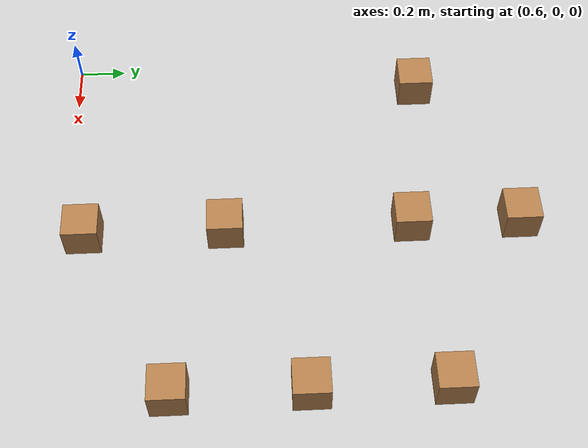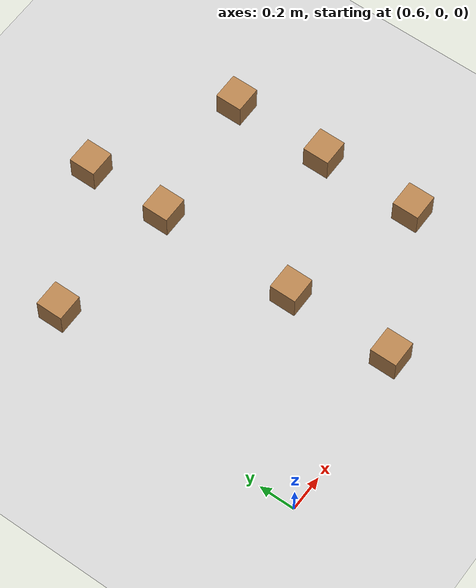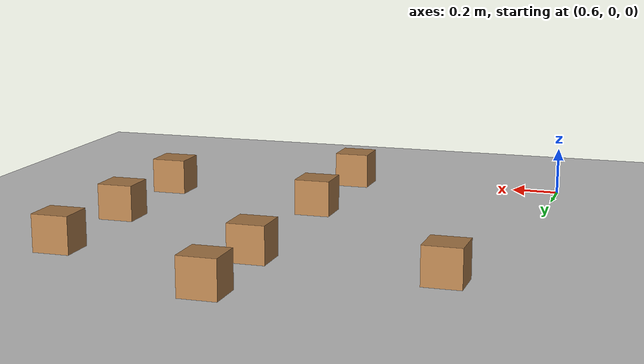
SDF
<sdf version="1.7">
 <world name="default">
  <model name="ground_plane">
   <static>1</static>
   <link name="link">
    <collision name="collision">
     <geometry><plane><normal>0 0 1</normal><size>100 100</size></plane></geometry>
     <surface>
      <contact><collide_bitmask>65535</collide_bitmask></contact>
      <friction><ode><mu>100</mu><mu2>50</mu2></ode></friction>
     </surface>
    </collision>
    <visual name="visual">
     <cast_shadows>0</cast_shadows>
     <geometry><plane><normal>0 0 1</normal><size>100 100</size></plane></geometry>
     <material>
      <script><uri>file://media/materials/scripts/gazebo.material</uri><name>Gazebo/Grey</name></script>
     </material>
    </visual>
   </link>
  </model>
  <model name="wood_cube_15_clone_0">
   <link name="link">
    <pose>0 0 0.05 0 -0 0</pose>
    <inertial>
     <mass>0.5167</mass>
     <inertia>
      <ixx>0.00086117</ixx>
      <ixy>0</ixy>
      <ixz>0</ixz>
      <iyy>0.00086117</iyy>
      <iyz>0</iyz>
      <izz>0.00086117</izz>
     </inertia>
    </inertial>
    <visual name="visual">
     <geometry><box><size>0.15 0.15 0.15</size></box></geometry>
     <material>
      <script><uri>file://media/materials/scripts/gazebo.material</uri><name>Gazebo/Wood</name></script>
      <shader type="pixel"><normal_map>__default__</normal_map></shader>
      <ambient>1 1 1 1</ambient>
      <diffuse>1 1 1 1</diffuse>
      <specular>0.2 0.2 0.2 1</specular>
      <emissive>0 0 0 1</emissive>
     </material>
    </visual>
    <collision name="collision">
     <geometry><box><size>0.15 0.15 0.15</size></box></geometry>
     <surface>
      <friction>
       <ode><mu>1</mu><mu2>1</mu2><fdir1>0 0 0</fdir1><slip1>0</slip1><slip2>0</slip2></ode>
       <torsional>
        <coefficient>1</coefficient>
        <patch_radius>0</patch_radius>
        <surface_radius>0.01</surface_radius>
        <use_patch_radius>0</use_patch_radius>
        <ode><slip>0</slip></ode>
       </torsional>
      </friction>
      <bounce><restitution_coefficient>0</restitution_coefficient><threshold>1e+06</threshold></bounce>
      <contact>
       <collide_without_contact>0</collide_without_contact>
       <collide_without_contact_bitmask>1</collide_without_contact_bitmask>
       <collide_bitmask>1</collide_bitmask>
       <ode>
        <soft_cfm>0</soft_cfm>
        <soft_erp>0.2</soft_erp>
        <kp>100000</kp>
        <kd>100</kd>
        <max_vel>100</max_vel>
        <min_depth>0.001</min_depth>
       </ode>
       <bullet>
        <split_impulse>1</split_impulse>
        <split_impulse_penetration_threshold>-0.01</split_impulse_penetration_threshold>
        <soft_cfm>0</soft_cfm>
        <soft_erp>0.2</soft_erp>
        <kp>100000</kp>
        <kd>100</kd>
       </bullet>
      </contact>
     </surface>
    </collision>
   </link>
   <static>0</static>
   <pose>0.775 1.55 0.023987 0 -0 0</pose>
  </model>
  <model name="wood_cube_15_clone_clone">
   <link name="link">
    <pose>0 0 0.05 0 -0 0</pose>
    <inertial>
     <mass>0.5167</mass>
     <inertia>
      <ixx>0.00086117</ixx>
      <ixy>0</ixy>
      <ixz>0</ixz>
      <iyy>0.00086117</iyy>
      <iyz>0</iyz>
      <izz>0.00086117</izz>
     </inertia>
    </inertial>
    <visual name="visual">
     <geometry><box><size>0.15 0.15 0.15</size></box></geometry>
     <material>
      <script><uri>file://media/materials/scripts/gazebo.material</uri><name>Gazebo/Wood</name></script>
      <shader type="pixel"><normal_map>__default__</normal_map></shader>
      <ambient>1 1 1 1</ambient>
      <diffuse>1 1 1 1</diffuse>
      <specular>0.2 0.2 0.2 1</specular>
      <emissive>0 0 0 1</emissive>
     </material>
    </visual>
    <collision name="collision">
     <geometry><box><size>0.15 0.15 0.15</size></box></geometry>
     <surface>
      <friction>
       <ode><mu>1</mu><mu2>1</mu2><fdir1>0 0 0</fdir1><slip1>0</slip1><slip2>0</slip2></ode>
       <torsional>
        <coefficient>1</coefficient>
        <patch_radius>0</patch_radius>
        <surface_radius>0.01</surface_radius>
        <use_patch_radius>0</use_patch_radius>
        <ode><slip>0</slip></ode>
       </torsional>
      </friction>
      <bounce><restitution_coefficient>0</restitution_coefficient><threshold>1e+06</threshold></bounce>
      <contact>
       <collide_without_contact>0</collide_without_contact>
       <collide_without_contact_bitmask>1</collide_without_contact_bitmask>
       <collide_bitmask>1</collide_bitmask>
       <ode>
        <soft_cfm>0</soft_cfm>
        <soft_erp>0.2</soft_erp>
        <kp>100000</kp>
        <kd>100</kd>
        <max_vel>100</max_vel>
        <min_depth>0.001</min_depth>
       </ode>
       <bullet>
        <split_impulse>1</split_impulse>
        <split_impulse_penetration_threshold>-0.01</split_impulse_penetration_threshold>
        <soft_cfm>0</soft_cfm>
        <soft_erp>0.2</soft_erp>
        <kp>100000</kp>
        <kd>100</kd>
       </bullet>
      </contact>
     </surface>
    </collision>
   </link>
   <static>0</static>
   <pose>1.52496 1.46287 0.023987 0 -0 -0.000159</pose>
  </model>
  <model name="wood_cube_15_clone_clone_0">
   <link name="link">
    <pose>0 0 0.05 0 -0 0</pose>
    <inertial>
     <mass>0.5167</mass>
     <inertia>
      <ixx>0.00086117</ixx>
      <ixy>0</ixy>
      <ixz>0</ixz>
      <iyy>0.00086117</iyy>
      <iyz>0</iyz>
      <izz>0.00086117</izz>
     </inertia>
    </inertial>
    <visual name="visual">
     <geometry><box><size>0.15 0.15 0.15</size></box></geometry>
     <material>
      <script><uri>file://media/materials/scripts/gazebo.material</uri><name>Gazebo/Wood</name></script>
      <shader type="pixel"><normal_map>__default__</normal_map></shader>
      <ambient>1 1 1 1</ambient>
      <diffuse>1 1 1 1</diffuse>
      <specular>0.2 0.2 0.2 1</specular>
      <emissive>0 0 0 1</emissive>
     </material>
    </visual>
    <collision name="collision">
     <geometry><box><size>0.15 0.15 0.15</size></box></geometry>
     <surface>
      <friction>
       <ode><mu>1</mu><mu2>1</mu2><fdir1>0 0 0</fdir1><slip1>0</slip1><slip2>0</slip2></ode>
       <torsional>
        <coefficient>1</coefficient>
        <patch_radius>0</patch_radius>
        <surface_radius>0.01</surface_radius>
        <use_patch_radius>0</use_patch_radius>
        <ode><slip>0</slip></ode>
       </torsional>
      </friction>
      <bounce><restitution_coefficient>0</restitution_coefficient><threshold>1e+06</threshold></bounce>
      <contact>
       <collide_without_contact>0</collide_without_contact>
       <collide_without_contact_bitmask>1</collide_without_contact_bitmask>
       <collide_bitmask>1</collide_bitmask>
       <ode>
        <soft_cfm>0</soft_cfm>
        <soft_erp>0.2</soft_erp>
        <kp>100000</kp>
        <kd>100</kd>
        <max_vel>100</max_vel>
        <min_depth>0.001</min_depth>
       </ode>
       <bullet>
        <split_impulse>1</split_impulse>
        <split_impulse_penetration_threshold>-0.01</split_impulse_penetration_threshold>
        <soft_cfm>0</soft_cfm>
        <soft_erp>0.2</soft_erp>
        <kp>100000</kp>
        <kd>100</kd>
       </bullet>
      </contact>
     </surface>
    </collision>
   </link>
   <static>0</static>
   <pose>1.525 0.675 0.023987 0 -0 0</pose>
  </model>
  <model name="wood_cube_15_clone_clone_1">
   <link name="link">
    <pose>0 0 0.05 0 -0 0</pose>
    <inertial>
     <mass>0.5167</mass>
     <inertia>
      <ixx>0.00086117</ixx>
      <ixy>0</ixy>
      <ixz>0</ixz>
      <iyy>0.00086117</iyy>
      <iyz>0</iyz>
      <izz>0.00086117</izz>
     </inertia>
    </inertial>
    <visual name="visual">
     <geometry><box><size>0.15 0.15 0.15</size></box></geometry>
     <material>
      <script><uri>file://media/materials/scripts/gazebo.material</uri><name>Gazebo/Wood</name></script>
      <shader type="pixel"><normal_map>__default__</normal_map></shader>
      <ambient>1 1 1 1</ambient>
      <diffuse>1 1 1 1</diffuse>
      <specular>0.2 0.2 0.2 1</specular>
      <emissive>0 0 0 1</emissive>
     </material>
    </visual>
    <collision name="collision">
     <geometry><box><size>0.15 0.15 0.15</size></box></geometry>
     <surface>
      <friction>
       <ode><mu>1</mu><mu2>1</mu2><fdir1>0 0 0</fdir1><slip1>0</slip1><slip2>0</slip2></ode>
       <torsional>
        <coefficient>1</coefficient>
        <patch_radius>0</patch_radius>
        <surface_radius>0.01</surface_radius>
        <use_patch_radius>0</use_patch_radius>
        <ode><slip>0</slip></ode>
       </torsional>
      </friction>
      <bounce><restitution_coefficient>0</restitution_coefficient><threshold>1e+06</threshold></bounce>
      <contact>
       <collide_without_contact>0</collide_without_contact>
       <collide_without_contact_bitmask>1</collide_without_contact_bitmask>
       <collide_bitmask>1</collide_bitmask>
       <ode>
        <soft_cfm>0</soft_cfm>
        <soft_erp>0.2</soft_erp>
        <kp>100000</kp>
        <kd>100</kd>
        <max_vel>100</max_vel>
        <min_depth>0.001</min_depth>
       </ode>
       <bullet>
        <split_impulse>1</split_impulse>
        <split_impulse_penetration_threshold>-0.01</split_impulse_penetration_threshold>
        <soft_cfm>0</soft_cfm>
        <soft_erp>0.2</soft_erp>
        <kp>100000</kp>
        <kd>100</kd>
       </bullet>
      </contact>
     </surface>
    </collision>
   </link>
   <static>0</static>
   <pose>2.275 1.55 0.023987 0 -0 0</pose>
  </model>
  <model name="wood_cube_15_clone_clone_2">
   <link name="link">
    <pose>0 0 0.05 0 -0 0</pose>
    <inertial>
     <mass>0.5167</mass>
     <inertia>
      <ixx>0.00086117</ixx>
      <ixy>0</ixy>
      <ixz>0</ixz>
      <iyy>0.00086117</iyy>
      <iyz>0</iyz>
      <izz>0.00086117</izz>
     </inertia>
    </inertial>
    <visual name="visual">
     <geometry><box><size>0.15 0.15 0.15</size></box></geometry>
     <material>
      <script><uri>file://media/materials/scripts/gazebo.material</uri><name>Gazebo/Wood</name></script>
      <shader type="pixel"><normal_map>__default__</normal_map></shader>
      <ambient>1 1 1 1</ambient>
      <diffuse>1 1 1 1</diffuse>
      <specular>0.2 0.2 0.2 1</specular>
      <emissive>0 0 0 1</emissive>
     </material>
    </visual>
    <collision name="collision">
     <geometry><box><size>0.15 0.15 0.15</size></box></geometry>
     <surface>
      <friction>
       <ode><mu>1</mu><mu2>1</mu2><fdir1>0 0 0</fdir1><slip1>0</slip1><slip2>0</slip2></ode>
       <torsional>
        <coefficient>1</coefficient>
        <patch_radius>0</patch_radius>
        <surface_radius>0.01</surface_radius>
        <use_patch_radius>0</use_patch_radius>
        <ode><slip>0</slip></ode>
       </torsional>
      </friction>
      <bounce><restitution_coefficient>0</restitution_coefficient><threshold>1e+06</threshold></bounce>
      <contact>
       <collide_without_contact>0</collide_without_contact>
       <collide_without_contact_bitmask>1</collide_without_contact_bitmask>
       <collide_bitmask>1</collide_bitmask>
       <ode>
        <soft_cfm>0</soft_cfm>
        <soft_erp>0.2</soft_erp>
        <kp>100000</kp>
        <kd>100</kd>
        <max_vel>100</max_vel>
        <min_depth>0.001</min_depth>
       </ode>
       <bullet>
        <split_impulse>1</split_impulse>
        <split_impulse_penetration_threshold>-0.01</split_impulse_penetration_threshold>
        <soft_cfm>0</soft_cfm>
        <soft_erp>0.2</soft_erp>
        <kp>100000</kp>
        <kd>100</kd>
       </bullet>
      </contact>
     </surface>
    </collision>
   </link>
   <static>0</static>
   <pose>2.275 1 0.023987 0 -0 0</pose>
  </model>
  <model name="wood_cube_15_clone_clone_3">
   <link name="link">
    <pose>0 0 0.05 0 -0 0</pose>
    <inertial>
     <mass>0.5167</mass>
     <inertia>
      <ixx>0.00086117</ixx>
      <ixy>0</ixy>
      <ixz>0</ixz>
      <iyy>0.00086117</iyy>
      <iyz>0</iyz>
      <izz>0.00086117</izz>
     </inertia>
    </inertial>
    <visual name="visual">
     <geometry><box><size>0.15 0.15 0.15</size></box></geometry>
     <material>
      <script><uri>file://media/materials/scripts/gazebo.material</uri><name>Gazebo/Wood</name></script>
      <shader type="pixel"><normal_map>__default__</normal_map></shader>
      <ambient>1 1 1 1</ambient>
      <diffuse>1 1 1 1</diffuse>
      <specular>0.2 0.2 0.2 1</specular>
      <emissive>0 0 0 1</emissive>
     </material>
    </visual>
    <collision name="collision">
     <geometry><box><size>0.15 0.15 0.15</size></box></geometry>
     <surface>
      <friction>
       <ode><mu>1</mu><mu2>1</mu2><fdir1>0 0 0</fdir1><slip1>0</slip1><slip2>0</slip2></ode>
       <torsional>
        <coefficient>1</coefficient>
        <patch_radius>0</patch_radius>
        <surface_radius>0.01</surface_radius>
        <use_patch_radius>0</use_patch_radius>
        <ode><slip>0</slip></ode>
       </torsional>
      </friction>
      <bounce><restitution_coefficient>0</restitution_coefficient><threshold>1e+06</threshold></bounce>
      <contact>
       <collide_without_contact>0</collide_without_contact>
       <collide_without_contact_bitmask>1</collide_without_contact_bitmask>
       <collide_bitmask>1</collide_bitmask>
       <ode>
        <soft_cfm>0</soft_cfm>
        <soft_erp>0.2</soft_erp>
        <kp>100000</kp>
        <kd>100</kd>
        <max_vel>100</max_vel>
        <min_depth>0.001</min_depth>
       </ode>
       <bullet>
        <split_impulse>1</split_impulse>
        <split_impulse_penetration_threshold>-0.01</split_impulse_penetration_threshold>
        <soft_cfm>0</soft_cfm>
        <soft_erp>0.2</soft_erp>
        <kp>100000</kp>
        <kd>100</kd>
       </bullet>
      </contact>
     </surface>
    </collision>
   </link>
   <static>0</static>
   <pose>2.275 0.45 0.023987 0 -0 0</pose>
  </model>
  <model name="wood_cube_15_clone_clone_clone">
   <link name="link">
    <pose>0 0 0.05 0 -0 0</pose>
    <inertial>
     <mass>0.5167</mass>
     <inertia>
      <ixx>0.00086117</ixx>
      <ixy>0</ixy>
      <ixz>0</ixz>
      <iyy>0.00086117</iyy>
      <iyz>0</iyz>
      <izz>0.00086117</izz>
     </inertia>
    </inertial>
    <visual name="visual">
     <geometry><box><size>0.15 0.15 0.15</size></box></geometry>
     <material>
      <script><uri>file://media/materials/scripts/gazebo.material</uri><name>Gazebo/Wood</name></script>
      <shader type="pixel"><normal_map>__default__</normal_map></shader>
      <ambient>1 1 1 1</ambient>
      <diffuse>1 1 1 1</diffuse>
      <specular>0.2 0.2 0.2 1</specular>
      <emissive>0 0 0 1</emissive>
     </material>
    </visual>
    <collision name="collision">
     <geometry><box><size>0.15 0.15 0.15</size></box></geometry>
     <surface>
      <friction>
       <ode><mu>1</mu><mu2>1</mu2><fdir1>0 0 0</fdir1><slip1>0</slip1><slip2>0</slip2></ode>
       <torsional>
        <coefficient>1</coefficient>
        <patch_radius>0</patch_radius>
        <surface_radius>0.01</surface_radius>
        <use_patch_radius>0</use_patch_radius>
        <ode><slip>0</slip></ode>
       </torsional>
      </friction>
      <bounce><restitution_coefficient>0</restitution_coefficient><threshold>1e+06</threshold></bounce>
      <contact>
       <collide_without_contact>0</collide_without_contact>
       <collide_without_contact_bitmask>1</collide_without_contact_bitmask>
       <collide_bitmask>1</collide_bitmask>
       <ode>
        <soft_cfm>0</soft_cfm>
        <soft_erp>0.2</soft_erp>
        <kp>100000</kp>
        <kd>100</kd>
        <max_vel>100</max_vel>
        <min_depth>0.001</min_depth>
       </ode>
       <bullet>
        <split_impulse>1</split_impulse>
        <split_impulse_penetration_threshold>-0.01</split_impulse_penetration_threshold>
        <soft_cfm>0</soft_cfm>
        <soft_erp>0.2</soft_erp>
        <kp>100000</kp>
        <kd>100</kd>
       </bullet>
      </contact>
     </surface>
    </collision>
   </link>
   <static>0</static>
   <pose>1.525 1.925 0.023987 0 -0 0</pose>
  </model>
  <model name="wood_cube_15_clone_clone_clone_0">
   <link name="link">
    <pose>0 0 0.05 0 -0 0</pose>
    <inertial>
     <mass>0.5167</mass>
     <inertia>
      <ixx>0.00086117</ixx>
      <ixy>0</ixy>
      <ixz>0</ixz>
      <iyy>0.00086117</iyy>
      <iyz>0</iyz>
      <izz>0.00086117</izz>
     </inertia>
    </inertial>
    <visual name="visual">
     <geometry><box><size>0.15 0.15 0.15</size></box></geometry>
     <material>
      <script><uri>file://media/materials/scripts/gazebo.material</uri><name>Gazebo/Wood</name></script>
      <shader type="pixel"><normal_map>__default__</normal_map></shader>
      <ambient>1 1 1 1</ambient>
      <diffuse>1 1 1 1</diffuse>
      <specular>0.2 0.2 0.2 1</specular>
      <emissive>0 0 0 1</emissive>
     </material>
    </visual>
    <collision name="collision">
     <geometry><box><size>0.15 0.15 0.15</size></box></geometry>
     <surface>
      <friction>
       <ode><mu>1</mu><mu2>1</mu2><fdir1>0 0 0</fdir1><slip1>0</slip1><slip2>0</slip2></ode>
       <torsional>
        <coefficient>1</coefficient>
        <patch_radius>0</patch_radius>
        <surface_radius>0.01</surface_radius>
        <use_patch_radius>0</use_patch_radius>
        <ode><slip>0</slip></ode>
       </torsional>
      </friction>
      <bounce><restitution_coefficient>0</restitution_coefficient><threshold>1e+06</threshold></bounce>
      <contact>
       <collide_without_contact>0</collide_without_contact>
       <collide_without_contact_bitmask>1</collide_without_contact_bitmask>
       <collide_bitmask>1</collide_bitmask>
       <ode>
        <soft_cfm>0</soft_cfm>
        <soft_erp>0.2</soft_erp>
        <kp>100000</kp>
        <kd>100</kd>
        <max_vel>100</max_vel>
        <min_depth>0.001</min_depth>
       </ode>
       <bullet>
        <split_impulse>1</split_impulse>
        <split_impulse_penetration_threshold>-0.01</split_impulse_penetration_threshold>
        <soft_cfm>0</soft_cfm>
        <soft_erp>0.2</soft_erp>
        <kp>100000</kp>
        <kd>100</kd>
       </bullet>
      </contact>
     </surface>
    </collision>
   </link>
   <static>0</static>
   <pose>1.525 0.075 0.023987 0 -0 0.000328</pose>
  </model>
 </world>
</sdf>
